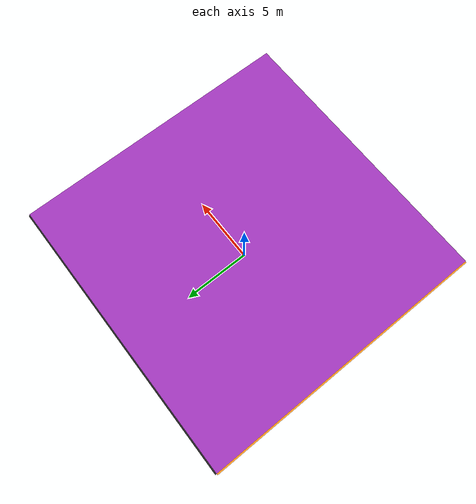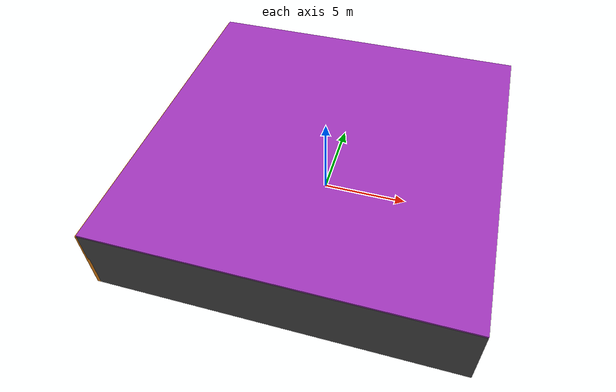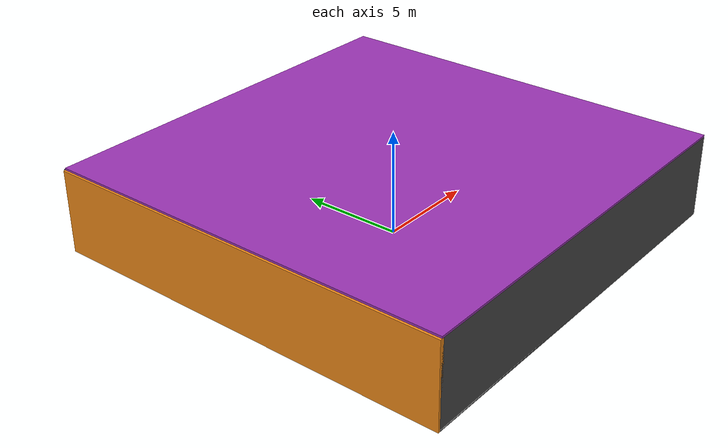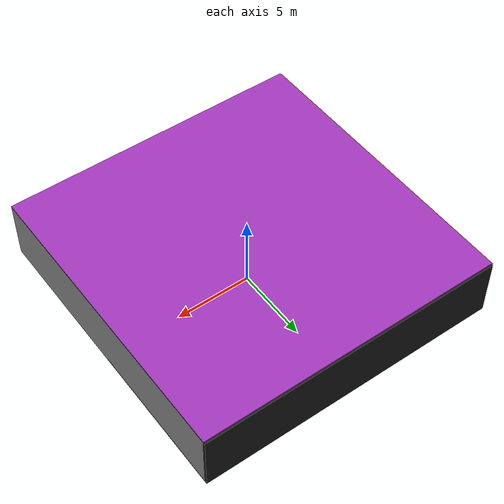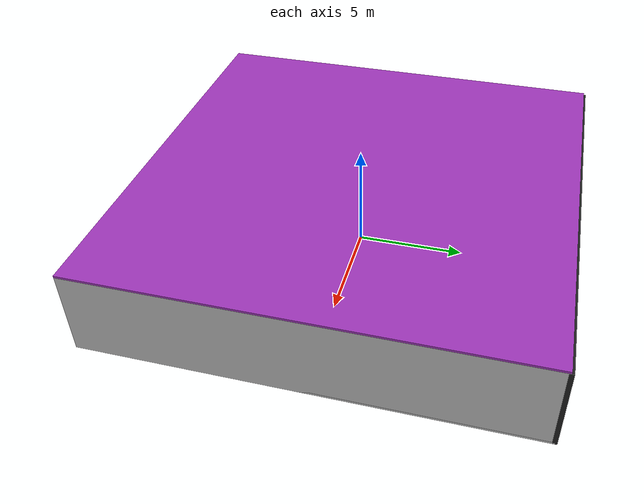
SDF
<sdf version="1.4">
 <world name="default">
  <physics type="ode">
   <max_step_size>0.001</max_step_size>
   <real_time_factor>1</real_time_factor>
   <real_time_update_rate>1000</real_time_update_rate>
   <gravity>0 0 -9.8</gravity>
  </physics>
  <scene><ambient>0.4 0.4 0.4 1</ambient><background>0.7 0.7 0.7 1</background><shadows>1</shadows></scene>
  <model name="Surrounding">
   <static>1</static>
   <link name="Ceiling">
    <collision name="Ceiling_Collision"><geometry><box><size>20 20 0.1</size></box></geometry></collision>
    <visual name="Ceiling_Visual">
     <geometry><box><size>20 20 0.1</size></box></geometry>
     <material>
      <script><uri>file://media/materials/scripts/gazebo.material</uri><name>Gazebo/Purple</name></script>
     </material>
    </visual>
    <pose>0 0 4.05 0 0 0</pose>
   </link>
   <link name="Wall_South">
    <collision name="Wall_South_Collision">
     <geometry><box><size>20 0 4</size></box></geometry>
     <pose>0 0 2 0 -0 0</pose>
    </collision>
    <visual name="Wall_South_Visual">
     <pose>0 0 2 0 -0 0</pose>
     <geometry><box><size>20 0 4</size></box></geometry>
     <material>
      <script><uri>file://media/materials/scripts/gazebo.material</uri><name>Gazebo/Road</name></script>
     </material>
    </visual>
    <velocity_decay><linear>0</linear><angular>0</angular></velocity_decay>
    <pose>0 -10 0 0 -0 0</pose>
   </link>
   <link name="Wall_East">
    <collision name="Wall_21_Collision">
     <geometry><box><size>20 0 4</size></box></geometry>
     <pose>0 0 2 0 -0 0</pose>
    </collision>
    <visual name="Wall_21_Visual">
     <pose>0 0 2 0 -0 0</pose>
     <geometry><box><size>20 0 4</size></box></geometry>
     <material>
      <script><uri>file://media/materials/scripts/gazebo.material</uri><name>Gazebo/LightOff</name></script>
     </material>
    </visual>
    <velocity_decay><linear>0</linear><angular>0</angular></velocity_decay>
    <pose>10 0 0 0 -0 1.5708</pose>
   </link>
   <link name="Wall_North">
    <collision name="Wall_22_Collision">
     <geometry><box><size>20 0.2 4</size></box></geometry>
     <pose>0 0 2 0 -0 0</pose>
    </collision>
    <visual name="Wall_22_Visual">
     <pose>0 0 2 0 -0 0</pose>
     <geometry><box><size>20 0.2 4</size></box></geometry>
     <material>
      <script><uri>file://media/materials/scripts/gazebo.material</uri><name>Gazebo/FlatBlack</name></script>
     </material>
    </visual>
    <velocity_decay><linear>0</linear><angular>0</angular></velocity_decay>
    <pose>0 10 0 0 -0 0</pose>
   </link>
   <link name="Wall_West">
    <collision name="Wall_23_Collision">
     <geometry><box><size>20 0.2 4</size></box></geometry>
     <pose>0 0 2 0 -0 0</pose>
    </collision>
    <visual name="Wall_23_Visual">
     <pose>0 0 2 0 -0 0</pose>
     <geometry><box><size>20 0.2 4</size></box></geometry>
     <material>
      <script><uri>file://media/materials/scripts/gazebo.material</uri><name>Gazebo/Orange</name></script>
     </material>
    </visual>
    <velocity_decay><linear>0</linear><angular>0</angular></velocity_decay>
    <pose>-10 0 0 0 0 -1.5708</pose>
   </link>
   <link name="Ground_link">
    <collision name="collision">
     <pose>0 0 .05 0 -0 0</pose>
     <geometry><box><size>20 20 0.1</size></box></geometry>
    </collision>
    <visual name="visual">
     <pose>0 0 .05 0 -0 0</pose>
     <geometry><box><size>20 20 0.1</size></box></geometry>
     <material>
      <script><uri>file://media/materials/scripts/gazebo.material</uri><name>Gazebo/PioneerBody</name></script>
     </material>
    </visual>
   </link>
   <static>1</static>
  </model>
  <spherical_coordinates>
   <surface_model>EARTH_WGS84</surface_model>
   <latitude_deg>0</latitude_deg>
   <longitude_deg>0</longitude_deg>
   <elevation>0</elevation>
   <heading_deg>0</heading_deg>
  </spherical_coordinates>
  <light name="lightball_0" type="diffuse">
   <diffuse>0.8 0.8 0.8 1</diffuse>
   <specular>0.2 0.2 0.2 1</specular>
   <attenuation>
    <range>100</range>
    <constant>0.7</constant>
    <linear>0.01</linear>
    <quadratic>0.001</quadratic>
   </attenuation>
   <direction>-0.5 0.1 -0.9</direction>
   <pose>-7.91202994206 7.16046463001 2.2005524822 0 0 0</pose>
  </light>
  <light name="lightball_1" type="diffuse">
   <diffuse>0.8 0.8 0.8 1</diffuse>
   <specular>0.2 0.2 0.2 1</specular>
   <attenuation>
    <range>100</range>
    <constant>0.7</constant>
    <linear>0.01</linear>
    <quadratic>0.001</quadratic>
   </attenuation>
   <direction>-0.5 0.1 -0.9</direction>
   <pose>-1.3587834029 3.56168966312 0.898599656101 0 0 0</pose>
  </light>
  <light name="lightball_2" type="diffuse">
   <diffuse>0.8 0.8 0.8 1</diffuse>
   <specular>0.2 0.2 0.2 1</specular>
   <attenuation>
    <range>100</range>
    <constant>0.7</constant>
    <linear>0.01</linear>
    <quadratic>0.001</quadratic>
   </attenuation>
   <direction>-0.5 0.1 -0.9</direction>
   <pose>7.71116898889 7.89994739553 1.01466820444 0 0 0</pose>
  </light>
  <light name="lightball_3" type="diffuse">
   <diffuse>0.8 0.8 0.8 1</diffuse>
   <specular>0.2 0.2 0.2 1</specular>
   <attenuation>
    <range>100</range>
    <constant>0.7</constant>
    <linear>0.01</linear>
    <quadratic>0.001</quadratic>
   </attenuation>
   <direction>-0.5 0.1 -0.9</direction>
   <pose>9.03624751411 -1.22619058054 1.13490081007 0 0 0</pose>
  </light>
  <light name="lightball_4" type="diffuse">
   <diffuse>0.8 0.8 0.8 1</diffuse>
   <specular>0.2 0.2 0.2 1</specular>
   <attenuation>
    <range>100</range>
    <constant>0.7</constant>
    <linear>0.01</linear>
    <quadratic>0.001</quadratic>
   </attenuation>
   <direction>-0.5 0.1 -0.9</direction>
   <pose>-2.13274417333 -3.2612702734 1.81570840297 0 0 0</pose>
  </light>
  <light name="lightball_5" type="diffuse">
   <diffuse>0.8 0.8 0.8 1</diffuse>
   <specular>0.2 0.2 0.2 1</specular>
   <attenuation>
    <range>100</range>
    <constant>0.7</constant>
    <linear>0.01</linear>
    <quadratic>0.001</quadratic>
   </attenuation>
   <direction>-0.5 0.1 -0.9</direction>
   <pose>-5.28162667336 -8.75217780787 3.22533676123 0 0 0</pose>
  </light>
  <light name="lightball_6" type="diffuse">
   <diffuse>0.8 0.8 0.8 1</diffuse>
   <specular>0.2 0.2 0.2 1</specular>
   <attenuation>
    <range>100</range>
    <constant>0.7</constant>
    <linear>0.01</linear>
    <quadratic>0.001</quadratic>
   </attenuation>
   <direction>-0.5 0.1 -0.9</direction>
   <pose>-5.52879881283 1.69297421098 3.88858351484 0 0 0</pose>
  </light>
  <light name="lightball_7" type="diffuse">
   <diffuse>0.8 0.8 0.8 1</diffuse>
   <specular>0.2 0.2 0.2 1</specular>
   <attenuation>
    <range>100</range>
    <constant>0.7</constant>
    <linear>0.01</linear>
    <quadratic>0.001</quadratic>
   </attenuation>
   <direction>-0.5 0.1 -0.9</direction>
   <pose>-4.3399498469 6.87467514822 0.768309525256 0 0 0</pose>
  </light>
  <include><uri>model://cabinet</uri><pose>-7.95962566501 -4.21041466009 0 0 0 2.97619888252</pose></include>
  <include>
   <uri>model://robocup_3Dsim_goal</uri>
   <pose>-7.4442608084 5.08229565947 0 0 0 1.23311704495</pose>
  </include>
  <include><uri>model://cabinet</uri><pose>1.09903144539 -5.08452077017 0 0 0 2.9348759411</pose></include>
  <include><uri>model://cabinet</uri><pose>1.79011605311 7.41761603722 0 0 0 2.99764358652</pose></include>
  <include><uri>model://table</uri><pose>3.83358111147 8.14749357317 0 0 0 1.24834614655</pose></include>
 </world>
</sdf>

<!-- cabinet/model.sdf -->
<sdf version="1.5">
  <model name="cabinet">
    <static>true</static>
    <link name="cabinet_bottom_plate">
      <inertial>
        <pose>0 0 -1 0 0 0</pose>
        <inertia>
          <ixx>2.050000</ixx>
          <ixy>0</ixy>
          <ixz>0</ixz>
          <iyy>2.050000</iyy>
          <iyz>0</iyz>
          <izz>2.050000</izz>
        </inertia>
        <mass>25.000000</mass>
      </inertial>
      <collision name="cabinet_bottom_plate_geom">
        <pose>0 0 0.010000 0 0 0</pose>
        <geometry>
          <box>
            <size>0.450000 0.450000 0.020000</size>
          </box>
        </geometry>
      </collision>
      <visual name="cabinet_bottom_plate_geom_visual">
        <pose>0 0 0.010000 0 0 0</pose>
        <geometry>
          <box>
            <size>0.450000 0.450000 0.020000</size>
          </box>
        </geometry>
        <material>
          <script>
            <uri>model://media/materials/scripts/gazebo.material</uri>
            <name>Gazebo/Wood</name>
          </script>
        </material>
      </visual>
      <collision name="cabinet_bottom_plate_geom_cabinet_back_plate">
        <pose>0.235000 0 0.510000 0 0 0</pose>
        <geometry>
          <box>
            <size>0.020000 0.450000 1.020000</size>
          </box>
        </geometry>
      </collision>
      <visual name="cabinet_bottom_plate_geom_cabinet_back_plate_visual">
        <pose>0.235000 0 0.510000 0 0 0</pose>
        <geometry>
          <box>
            <size>0.020000 0.450000 1.020000</size>
          </box>
        </geometry>
        <material>
          <script>
            <uri>model://media/materials/scripts/gazebo.material</uri>
            <name>Gazebo/Wood</name>
          </script>
        </material>
      </visual>
      <collision name="cabinet_bottom_plate_geom_cabinet_left_plate">
        <pose>0 0.235000 0.510000 0 0 0</pose>
        <geometry>
          <box>
            <size>0.450000 0.020000 1.020000</size>
          </box>
        </geometry>
      </collision>
      <visual name="cabinet_bottom_plate_geom_cabinet_left_plate_visual">
        <pose>0 0.235000 0.510000 0 0 0</pose>
        <geometry>
          <box>
            <size>0.450000 0.020000 1.020000</size>
          </box>
        </geometry>
        <material>
          <script>
            <uri>model://media/materials/scripts/gazebo.material</uri>
            <name>Gazebo/Wood</name>
          </script>
        </material>
      </visual>
      <collision name="cabinet_bottom_plate_geom_cabinet_middle_plate">
        <pose>0 0 0.510000 0 0 0</pose>
        <geometry>
          <box>
            <size>0.450000 0.450000 0.020000</size>
          </box>
        </geometry>
      </collision>
      <visual name="cabinet_bottom_plate_geom_cabinet_middle_plate_visual">
        <pose>0 0 0.510000 0 0 0</pose>
        <geometry>
          <box>
            <size>0.450000 0.450000 0.020000</size>
          </box>
        </geometry>
        <material>
          <script>
            <uri>model://media/materials/scripts/gazebo.material</uri>
            <name>Gazebo/Wood</name>
          </script>
        </material>
      </visual>
      <collision name="cabinet_bottom_plate_geom_cabinet_right_plate">
        <pose>0 -0.235000 0.510000 0 0 0</pose>
        <geometry>
          <box>
            <size>0.450000 0.020000 1.020000</size>
          </box>
        </geometry>
      </collision>
      <visual name="cabinet_bottom_plate_geom_cabinet_right_plate_visual">
        <pose>0 -0.235000 0.510000 0 0 0</pose>
        <geometry>
          <box>
            <size>0.450000 0.020000 1.020000</size>
          </box>
        </geometry>
        <material>
          <script>
            <uri>model://media/materials/scripts/gazebo.material</uri>
            <name>Gazebo/Wood</name>
          </script>
        </material>
      </visual>
      <collision name="cabinet_bottom_plate_geom_cabinet_top_plate">
        <pose>0 0 1.010000 0 0 0</pose>
        <geometry>
          <box>
            <size>0.450000 0.450000 0.020000</size>
          </box>
        </geometry>
      </collision>
      <visual name="cabinet_bottom_plate_geom_cabinet_top_plate_visual">
        <pose>0 0 1.010000 0 0 0</pose>
        <geometry>
          <box>
            <size>0.450000 0.450000 0.020000</size>
          </box>
        </geometry>
        <material>
          <script>
            <uri>model://media/materials/scripts/gazebo.material</uri>
            <name>Gazebo/Wood</name>
          </script>
        </material>
      </visual>
    </link>
  </model>
</sdf>

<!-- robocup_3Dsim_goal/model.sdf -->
<sdf version="1.5">
  <model name="robocup_3d_goal">
    <static>true</static>
    <link name="left_post">
      <pose>0 1.05 0.45 0 0 0</pose>
      <collision name="collision">
        <geometry>
          <cylinder>
            <radius>0.05</radius>
            <length>0.9</length>
          </cylinder>
        </geometry>
      </collision>
      <visual name="visual">
        <geometry>
          <cylinder>
            <radius>0.05</radius>
            <length>0.9</length>
          </cylinder>
        </geometry>
        <material>
          <script>
            <uri>file://media/materials/scripts/gazebo.material</uri>
            <name>Gazebo/ZincYellow</name>
          </script>
        </material>
      </visual>
    </link>
    <link name="left_support_horiz_lower">
      <pose>0.30 1.05 0.01 0 0 0</pose>
      <collision name="collision">
        <geometry>
          <box>
            <size>0.50 0.02 0.02</size>
          </box>
        </geometry>
      </collision>
      <visual name="visual">
        <geometry>
          <box>
            <size>0.50 0.02 0.02</size>
          </box>
        </geometry>
        <material>
          <script>
            <uri>file://media/materials/scripts/gazebo.material</uri>
            <name>Gazebo/White</name>
          </script>
        </material>
      </visual>
    </link>
    <link name="left_support_horiz_upper">
      <pose>0.30 1.05 0.79 0 0 0</pose>
      <collision name="collision">
        <geometry>
          <box>
            <size>0.50 0.02 0.02</size>
          </box>
        </geometry>
      </collision>
      <visual name="visual">
        <geometry>
          <box>
            <size>0.50 0.02 0.02</size>
          </box>
        </geometry>
        <material>
          <script>
            <uri>file://media/materials/scripts/gazebo.material</uri>
            <name>Gazebo/White</name>
          </script>
        </material>
      </visual>
    </link>
    <link name="left_support_vertical">
      <pose>0.56 1.05 0.4 0 1.5708 0</pose>
      <collision name="collision">
        <geometry>
          <box>
            <size>0.80 0.02 0.02</size>
          </box>
        </geometry>
      </collision>
      <visual name="visual">
        <geometry>
          <box>
            <size>0.80 0.02 0.02</size>
          </box>
        </geometry>
        <material>
          <script>
            <uri>file://media/materials/scripts/gazebo.material</uri>
            <name>Gazebo/White</name>
          </script>
        </material>
      </visual>
    </link>
    <link name="right_support_horiz_lower">
      <pose>0.30 -1.05 0.01 0 0 0</pose>
      <collision name="collision">
        <geometry>
          <box>
            <size>0.50 0.02 0.02</size>
          </box>
        </geometry>
      </collision>
      <visual name="visual">
        <geometry>
          <box>
            <size>0.50 0.02 0.02</size>
          </box>
        </geometry>
        <material>
          <script>
            <uri>file://media/materials/scripts/gazebo.material</uri>
            <name>Gazebo/White</name>
          </script>
        </material>
      </visual>
    </link>
    <link name="right_support_horiz_upper">
      <pose>0.30 -1.05 0.79 0 0 0</pose>
      <collision name="collision">
        <geometry>
          <box>
            <size>0.50 0.02 0.02</size>
          </box>
        </geometry>
      </collision>
      <visual name="visual">
        <geometry>
          <box>
            <size>0.50 0.02 0.02</size>
          </box>
        </geometry>
        <material>
          <script>
            <uri>file://media/materials/scripts/gazebo.material</uri>
            <name>Gazebo/White</name>
          </script>
        </material>
      </visual>
    </link>
    <link name="right_support_vertical">
      <pose>0.56 -1.05 0.4 0 1.5708 0</pose>
      <collision name="collision">
        <geometry>
          <box>
            <size>0.80 0.02 0.02</size>
          </box>
        </geometry>
      </collision>
      <visual name="visual">
        <geometry>
          <box>
            <size>0.80 0.02 0.02</size>
          </box>
        </geometry>
        <material>
          <script>
            <uri>file://media/materials/scripts/gazebo.material</uri>
            <name>Gazebo/White</name>
          </script>
        </material>
      </visual>
    </link>
    <link name="center_support_horiz_lower">
      <pose>0.56 0 0.01 0 1.5708 0</pose>
      <collision name="collision">
        <geometry>
          <box>
            <size>0.02 2.08 0.02</size>
          </box>
        </geometry>
      </collision>
      <visual name="visual">
        <geometry>
          <box>
            <size>0.02 2.08 0.02</size>
          </box>
        </geometry>
        <material>
          <script>
            <uri>file://media/materials/scripts/gazebo.material</uri>
            <name>Gazebo/White</name>
          </script>
        </material>
      </visual>
    </link>
    <link name="center_support_horiz_upper">
      <pose>0.56 0 0.79 0 1.5708 0</pose>
      <collision name="collision">
        <geometry>
          <box>
            <size>0.02 2.08 0.02</size>
          </box>
        </geometry>
      </collision>
      <visual name="visual">
        <geometry>
          <box>
            <size>0.02 2.08 0.02</size>
          </box>
        </geometry>
        <material>
          <script>
            <uri>file://media/materials/scripts/gazebo.material</uri>
            <name>Gazebo/White</name>
          </script>
        </material>
      </visual>
    </link>
    <link name="right_post">
      <pose>0 -1.05 0.45 0 0 0</pose>
      <collision name="collision">
        <geometry>
          <cylinder>
            <radius>0.05</radius>
            <length>0.9</length>
          </cylinder>
        </geometry>
      </collision>
      <visual name="visual">
        <geometry>
          <cylinder>
            <radius>0.05</radius>
            <length>0.9</length>
          </cylinder>
        </geometry>
        <material>
          <script>
            <uri>file://media/materials/scripts/gazebo.material</uri>
            <name>Gazebo/ZincYellow</name>
          </script>
        </material>
      </visual>
    </link>
    <link name="crossbar">
      <pose>0 0 0.85 1.57 1.57 0</pose>
      <collision name="collision">
        <geometry>
          <cylinder>
            <radius>0.05</radius>
            <length>2.0</length>
          </cylinder>
        </geometry>
      </collision>
      <visual name="visual">
        <geometry>
          <cylinder>
            <radius>0.05</radius>
            <length>2.0</length>
          </cylinder>
        </geometry>
        <material>
          <script>
            <uri>file://media/materials/scripts/gazebo.material</uri>
            <name>Gazebo/ZincYellow</name>
          </script>
        </material>
      </visual>
    </link>
    <link name="center_net">
      <pose>0.56 0 0.40 0 0 0</pose>
      <collision name="collision">
        <geometry>
          <box>
            <size>0.01 2.1 0.80</size>
          </box>
        </geometry>
      </collision>
      <visual name="visual">
        <geometry>
          <box>
            <size>0.01 2.1 0.80</size>
          </box>
        </geometry>
        <material>
          <script>
            <uri>model://../model_source/models/robocup09_spl_field/materials/scripts/</uri>
            <uri>model://../model_source/models/robocup09_spl_field/materials/textures/</uri>
            <name>RoboCup/Net</name>
          </script>
        </material>
      </visual>
    </link>
    <link name="left_net">
      <pose>0.30 1.05 0.40 0 0 0</pose>
      <collision name="collision">
        <geometry>
          <box>
            <size>0.50 0.01 0.76</size>
          </box>
        </geometry>
      </collision>
      <visual name="visual">
        <geometry>
          <box>
            <size>0.50 0.01 0.76</size>
          </box>
        </geometry>
        <material>
          <script>
            <uri>model://../model_source/models/robocup09_spl_field/materials/scripts/</uri>
            <uri>model://../model_source/models/robocup09_spl_field/materials/textures/</uri>
            <name>RoboCup/Net</name>
          </script>
        </material>
      </visual>
    </link>
    <link name="right_net">
      <pose>0.30 -1.05 0.40 0 0 0</pose>
      <collision name="collision">
        <geometry>
          <box>
            <size>0.50 0.01 0.76</size>
          </box>
        </geometry>
      </collision>
      <visual name="visual">
        <geometry>
          <box>
            <size>0.50 0.01 0.76</size>
          </box>
        </geometry>
        <material>
          <script>
            <uri>model://../model_source/models/robocup09_spl_field/materials/scripts/</uri>
            <uri>model://../model_source/models/robocup09_spl_field/materials/textures/</uri>
            <name>RoboCup/Net</name>
          </script>
        </material>
      </visual>
    </link>
  </model>
</sdf>

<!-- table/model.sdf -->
<sdf version="1.5">
  <model name="table">
    <static>true</static>
    <link name="link">
      <collision name="surface">
        <pose>0 0 1.0 0 0 0</pose>
        <geometry>
          <box>
            <size>1.5 0.8 0.03</size>
          </box>
        </geometry>
        <surface>
          <friction>
            <ode>
              <mu>0.6</mu>
              <mu2>0.6</mu2>
            </ode>
          </friction>
        </surface>
      </collision>
      <visual name="visual1">
        <pose>0 0 1.0 0 0 0</pose>
        <geometry>
          <box>
            <size>1.5 0.8 0.03</size>
          </box>
        </geometry>
        <material>
          <script>
            <uri>model://media/materials/scripts/gazebo.material</uri>
            <name>Gazebo/Wood</name>
          </script>
        </material>
      </visual>
      <collision name="front_left_leg">
        <pose>0.68 0.38 0.5 0 0 0</pose>
        <geometry>
          <cylinder>
            <radius>0.02</radius>
            <length>1.0</length>
          </cylinder>
        </geometry>
      </collision>
      <visual name="front_left_leg">
        <pose>0.68 0.38 0.5 0 0 0</pose>
        <geometry>
          <cylinder>
            <radius>0.02</radius>
            <length>1.0</length>
          </cylinder>
        </geometry>
        <material>
          <script>
            <uri>model://media/materials/scripts/gazebo.material</uri>
            <name>Gazebo/Grey</name>
          </script>
        </material>
      </visual>
      <collision name="front_right_leg">
        <pose>0.68 -0.38 0.5 0 0 0</pose>
        <geometry>
          <cylinder>
            <radius>0.02</radius>
            <length>1.0</length>
          </cylinder>
        </geometry>
      </collision>
      <visual name="front_right_leg">
        <pose>0.68 -0.38 0.5 0 0 0</pose>
        <geometry>
          <cylinder>
            <radius>0.02</radius>
            <length>1.0</length>
          </cylinder>
        </geometry>
        <material>
          <script>
            <uri>model://media/materials/scripts/gazebo.material</uri>
            <name>Gazebo/Grey</name>
          </script>
        </material>
      </visual>
      <collision name="back_right_leg">
        <pose>-0.68 -0.38 0.5 0 0 0</pose>
        <geometry>
          <cylinder>
            <radius>0.02</radius>
            <length>1.0</length>
          </cylinder>
        </geometry>
      </collision>
      <visual name="back_right_leg">
        <pose>-0.68 -0.38 0.5 0 0 0</pose>
        <geometry>
          <cylinder>
            <radius>0.02</radius>
            <length>1.0</length>
          </cylinder>
        </geometry>
        <material>
          <script>
            <uri>model://media/materials/scripts/gazebo.material</uri>
            <name>Gazebo/Grey</name>
          </script>
        </material>
      </visual>
      <collision name="back_left_leg">
        <pose>-0.68 0.38 0.5 0 0 0</pose>
        <geometry>
          <cylinder>
            <radius>0.02</radius>
            <length>1.0</length>
          </cylinder>
        </geometry>
      </collision>
      <visual name="back_left_leg">
        <pose>-0.68 0.38 0.5 0 0 0</pose>
        <geometry>
          <cylinder>
            <radius>0.02</radius>
            <length>1.0</length>
          </cylinder>
        </geometry>
        <material>
          <script>
            <uri>model://media/materials/scripts/gazebo.material</uri>
            <name>Gazebo/Grey</name>
          </script>
        </material>
      </visual>
    </link>
  </model>
</sdf>
